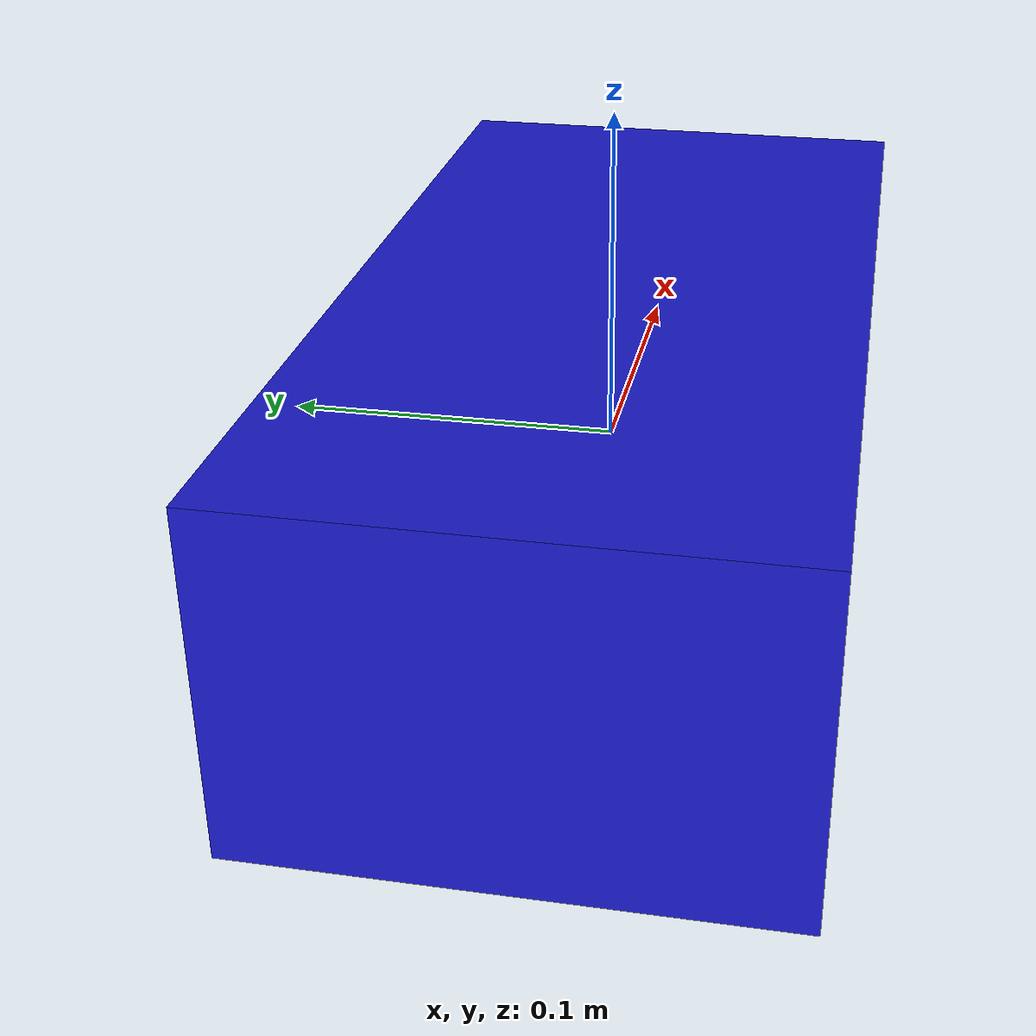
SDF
<?xml version="1.0"?>
<sdf version="1.7">
  <model name="shoe">
    <static>false</static>

    <link name="shoe_link">

      <!-- Collision shape -->
      <collision name="collision">
        <geometry>
          <box>
            <size>0.3 0.15 0.1</size> <!-- slightly bigger so it's easily visible -->
          </box>
        </geometry>
      </collision>

      <!-- Visual shape -->
      <visual name="visual">
        <geometry>
          <box>
            <size>0.3 0.15 0.1</size>
          </box>
        </geometry>
        <material>
          <ambient>0.1 0.1 0.8 1</ambient>
          <diffuse>0.1 0.1 0.8 1</diffuse>
        </material>
      </visual>

      <!-- Mass for physics -->
      <inertial>
        <mass>0.3</mass>
        <inertia>
          <ixx>0.001</ixx>
          <iyy>0.001</iyy>
          <izz>0.001</izz>
        </inertia>
      </inertial>

      <!-- Pose relative to the model include in the world -->
      <pose>0 0 0 0 0 0</pose>

    </link>
  </model>
</sdf>
